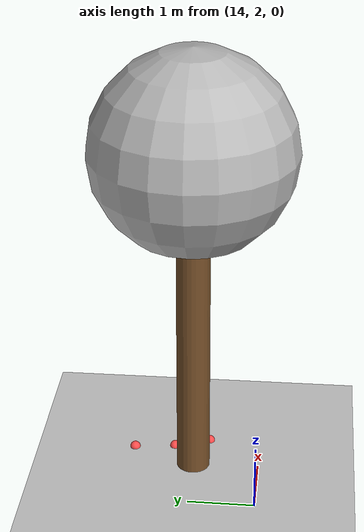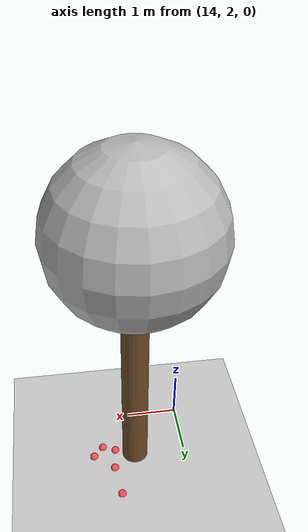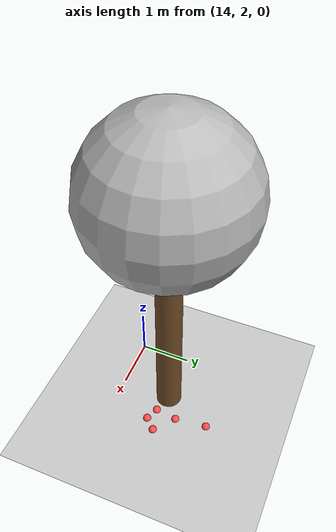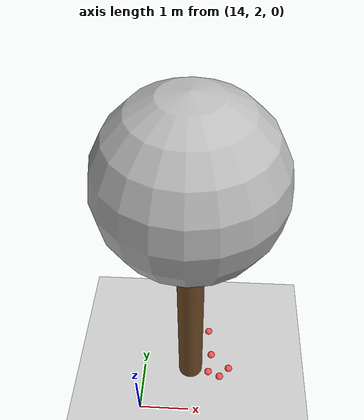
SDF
<sdf version="1.7">
 <world name="default">
  <model name="ground_plane">
   <static>1</static>
   <link name="link">
    <collision name="collision">
     <geometry><plane><normal>0 0 1</normal><size>100 100</size></plane></geometry>
     <surface>
      <contact><collide_bitmask>65535</collide_bitmask></contact>
      <friction><ode><mu>100</mu><mu2>50</mu2></ode></friction>
     </surface>
    </collision>
    <visual name="visual">
     <cast_shadows>0</cast_shadows>
     <geometry><plane><normal>0 0 1</normal><size>100 100</size></plane></geometry>
     <material>
      <script><uri>file://media/materials/scripts/gazebo.material</uri><name>Gazebo/Grey</name></script>
     </material>
    </visual>
   </link>
  </model>
  <model name="tree_simple_90">
   <static>1</static>
   <link name="link">
    <pose>0 0 0.1 0 -0 0</pose>
    <inertial>
     <mass>666</mass>
     <inertia>
      <ixx>0.0861167</ixx>
      <ixy>0</ixy>
      <ixz>0</ixz>
      <iyy>0.0861167</iyy>
      <iyz>0</iyz>
      <izz>0.0861167</izz>
     </inertia>
    </inertial>
    <collision name="collision_trunk">
     <pose>0 0 2 0 -0 0</pose>
     <geometry><cylinder><radius>0.25</radius><length>4</length></cylinder></geometry>
     <surface>
      <contact>
       <poissons_ratio>0.347</poissons_ratio>
       <elastic_modulus>8.8e+09</elastic_modulus>
       <ode><kp>100000</kp><kd>100</kd><max_vel>100</max_vel><min_depth>0.001</min_depth></ode>
      </contact>
      <friction>
       <torsional>
        <coefficient>1</coefficient>
        <use_patch_radius>0</use_patch_radius>
        <surface_radius>0.01</surface_radius>
       </torsional>
      </friction>
     </surface>
    </collision>
    <collision name="collision_treetop">
     <pose>0 0 5.2 0 -0 0</pose>
     <geometry><sphere><radius>1.5</radius></sphere></geometry>
     <surface>
      <contact>
       <poissons_ratio>0.347</poissons_ratio>
       <elastic_modulus>8.8e+09</elastic_modulus>
       <ode><kp>100000</kp><kd>100</kd><max_vel>100</max_vel><min_depth>0.001</min_depth></ode>
      </contact>
      <friction>
       <torsional>
        <coefficient>1</coefficient>
        <use_patch_radius>0</use_patch_radius>
        <surface_radius>0.01</surface_radius>
       </torsional>
      </friction>
     </surface>
    </collision>
    <visual name="trunk">
     <pose>0 0 2 0 -0 0</pose>
     <geometry><cylinder><radius>0.25</radius><length>4</length></cylinder></geometry>
     <material>
      <script>
       <uri>model://tree_simple/scripts</uri>
       <uri>model://tree_simple/materials/textures</uri>
       <name>TreeSimple/Trunk</name>
      </script>
     </material>
    </visual>
    <visual name="treetop">
     <pose>0 0 5.2 0 -0 0</pose>
     <geometry><sphere><radius>1.5</radius></sphere></geometry>
     <material>
      <script>
       <uri>model://tree_simple/scripts</uri>
       <uri>model://tree_simple/materials/textures</uri>
       <name>TreeSimple/Treetop</name>
      </script>
     </material>
    </visual>
   </link>
   <pose>15 3 -0.1 0 -0 0</pose>
  </model>
  <model name="seed_red_367">
   <link name="link">
    <inertial>
     <mass>1</mass>
     <inertia><ixx>0.1</ixx><ixy>0</ixy><ixz>0</ixz><iyy>0.1</iyy><iyz>0</iyz><izz>0.1</izz></inertia>
    </inertial>
    <visual name="visual">
     <geometry><sphere><radius>0.08</radius></sphere></geometry>
     <material>
      <script><name>Gazebo/Grey</name><uri>file://media/materials/scripts/gazebo.material</uri></script>
      <shader type="pixel"><normal_map>__default__</normal_map></shader>
      <ambient>1 0.3 0.3 1</ambient>
      <diffuse>0.7 0.7 0.7 1</diffuse>
      <specular>0.01 0.01 0.01 1</specular>
      <emissive>0 0 0 1</emissive>
     </material>
    </visual>
    <collision name="collision">
     <geometry><sphere><radius>0.0005</radius></sphere></geometry>
     <surface>
      <friction>
       <ode><mu>1</mu><mu2>1</mu2><fdir1>0 0 0</fdir1><slip1>0</slip1><slip2>0</slip2></ode>
       <torsional>
        <coefficient>1</coefficient>
        <patch_radius>0</patch_radius>
        <surface_radius>0</surface_radius>
        <use_patch_radius>1</use_patch_radius>
        <ode><slip>0</slip></ode>
       </torsional>
      </friction>
      <bounce><restitution_coefficient>0</restitution_coefficient><threshold>1e+06</threshold></bounce>
      <contact>
       <collide_without_contact>0</collide_without_contact>
       <collide_without_contact_bitmask>1</collide_without_contact_bitmask>
       <collide_bitmask>1</collide_bitmask>
       <ode>
        <soft_cfm>0</soft_cfm>
        <soft_erp>0.2</soft_erp>
        <kp>1e+13</kp>
        <kd>1</kd>
        <max_vel>0.01</max_vel>
        <min_depth>0</min_depth>
       </ode>
       <bullet>
        <split_impulse>1</split_impulse>
        <split_impulse_penetration_threshold>-0.01</split_impulse_penetration_threshold>
        <soft_cfm>0</soft_cfm>
        <soft_erp>0.2</soft_erp>
        <kp>1e+13</kp>
        <kd>1</kd>
       </bullet>
      </contact>
     </surface>
    </collision>
   </link>
   <static>0</static>
   <pose>15.8372 3.00099 0.0005 0 -0 0</pose>
  </model>
  <model name="seed_red_368">
   <link name="link">
    <inertial>
     <mass>1</mass>
     <inertia><ixx>0.1</ixx><ixy>0</ixy><ixz>0</ixz><iyy>0.1</iyy><iyz>0</iyz><izz>0.1</izz></inertia>
    </inertial>
    <visual name="visual">
     <geometry><sphere><radius>0.08</radius></sphere></geometry>
     <material>
      <script><name>Gazebo/Grey</name><uri>file://media/materials/scripts/gazebo.material</uri></script>
      <shader type="pixel"><normal_map>__default__</normal_map></shader>
      <ambient>1 0.3 0.3 1</ambient>
      <diffuse>0.7 0.7 0.7 1</diffuse>
      <specular>0.01 0.01 0.01 1</specular>
      <emissive>0 0 0 1</emissive>
     </material>
    </visual>
    <collision name="collision">
     <geometry><sphere><radius>0.0005</radius></sphere></geometry>
     <surface>
      <friction>
       <ode><mu>1</mu><mu2>1</mu2><fdir1>0 0 0</fdir1><slip1>0</slip1><slip2>0</slip2></ode>
       <torsional>
        <coefficient>1</coefficient>
        <patch_radius>0</patch_radius>
        <surface_radius>0</surface_radius>
        <use_patch_radius>1</use_patch_radius>
        <ode><slip>0</slip></ode>
       </torsional>
      </friction>
      <bounce><restitution_coefficient>0</restitution_coefficient><threshold>1e+06</threshold></bounce>
      <contact>
       <collide_without_contact>0</collide_without_contact>
       <collide_without_contact_bitmask>1</collide_without_contact_bitmask>
       <collide_bitmask>1</collide_bitmask>
       <ode>
        <soft_cfm>0</soft_cfm>
        <soft_erp>0.2</soft_erp>
        <kp>1e+13</kp>
        <kd>1</kd>
        <max_vel>0.01</max_vel>
        <min_depth>0</min_depth>
       </ode>
       <bullet>
        <split_impulse>1</split_impulse>
        <split_impulse_penetration_threshold>-0.01</split_impulse_penetration_threshold>
        <soft_cfm>0</soft_cfm>
        <soft_erp>0.2</soft_erp>
        <kp>1e+13</kp>
        <kd>1</kd>
       </bullet>
      </contact>
     </surface>
    </collision>
   </link>
   <static>0</static>
   <pose>15.3734 3.9484 0.0005 0 -0 0</pose>
  </model>
  <model name="seed_red_372">
   <link name="link">
    <inertial>
     <mass>1</mass>
     <inertia><ixx>0.1</ixx><ixy>0</ixy><ixz>0</ixz><iyy>0.1</iyy><iyz>0</iyz><izz>0.1</izz></inertia>
    </inertial>
    <visual name="visual">
     <geometry><sphere><radius>0.08</radius></sphere></geometry>
     <material>
      <script><name>Gazebo/Grey</name><uri>file://media/materials/scripts/gazebo.material</uri></script>
      <shader type="pixel"><normal_map>__default__</normal_map></shader>
      <ambient>1 0.3 0.3 1</ambient>
      <diffuse>0.7 0.7 0.7 1</diffuse>
      <specular>0.01 0.01 0.01 1</specular>
      <emissive>0 0 0 1</emissive>
     </material>
    </visual>
    <collision name="collision">
     <geometry><sphere><radius>0.0005</radius></sphere></geometry>
     <surface>
      <friction>
       <ode><mu>1</mu><mu2>1</mu2><fdir1>0 0 0</fdir1><slip1>0</slip1><slip2>0</slip2></ode>
       <torsional>
        <coefficient>1</coefficient>
        <patch_radius>0</patch_radius>
        <surface_radius>0</surface_radius>
        <use_patch_radius>1</use_patch_radius>
        <ode><slip>0</slip></ode>
       </torsional>
      </friction>
      <bounce><restitution_coefficient>0</restitution_coefficient><threshold>1e+06</threshold></bounce>
      <contact>
       <collide_without_contact>0</collide_without_contact>
       <collide_without_contact_bitmask>1</collide_without_contact_bitmask>
       <collide_bitmask>1</collide_bitmask>
       <ode>
        <soft_cfm>0</soft_cfm>
        <soft_erp>0.2</soft_erp>
        <kp>1e+13</kp>
        <kd>1</kd>
        <max_vel>0.01</max_vel>
        <min_depth>0</min_depth>
       </ode>
       <bullet>
        <split_impulse>1</split_impulse>
        <split_impulse_penetration_threshold>-0.01</split_impulse_penetration_threshold>
        <soft_cfm>0</soft_cfm>
        <soft_erp>0.2</soft_erp>
        <kp>1e+13</kp>
        <kd>1</kd>
       </bullet>
      </contact>
     </surface>
    </collision>
   </link>
   <static>0</static>
   <pose>15.3914 2.8975 0.0005 0 -0 0</pose>
  </model>
  <model name="seed_red_373">
   <link name="link">
    <inertial>
     <mass>1</mass>
     <inertia><ixx>0.1</ixx><ixy>0</ixy><ixz>0</ixz><iyy>0.1</iyy><iyz>0</iyz><izz>0.1</izz></inertia>
    </inertial>
    <visual name="visual">
     <geometry><sphere><radius>0.08</radius></sphere></geometry>
     <material>
      <script><name>Gazebo/Grey</name><uri>file://media/materials/scripts/gazebo.material</uri></script>
      <shader type="pixel"><normal_map>__default__</normal_map></shader>
      <ambient>1 0.3 0.3 1</ambient>
      <diffuse>0.7 0.7 0.7 1</diffuse>
      <specular>0.01 0.01 0.01 1</specular>
      <emissive>0 0 0 1</emissive>
     </material>
    </visual>
    <collision name="collision">
     <geometry><sphere><radius>0.0005</radius></sphere></geometry>
     <surface>
      <friction>
       <ode><mu>1</mu><mu2>1</mu2><fdir1>0 0 0</fdir1><slip1>0</slip1><slip2>0</slip2></ode>
       <torsional>
        <coefficient>1</coefficient>
        <patch_radius>0</patch_radius>
        <surface_radius>0</surface_radius>
        <use_patch_radius>1</use_patch_radius>
        <ode><slip>0</slip></ode>
       </torsional>
      </friction>
      <bounce><restitution_coefficient>0</restitution_coefficient><threshold>1e+06</threshold></bounce>
      <contact>
       <collide_without_contact>0</collide_without_contact>
       <collide_without_contact_bitmask>1</collide_without_contact_bitmask>
       <collide_bitmask>1</collide_bitmask>
       <ode>
        <soft_cfm>0</soft_cfm>
        <soft_erp>0.2</soft_erp>
        <kp>1e+13</kp>
        <kd>1</kd>
        <max_vel>0.01</max_vel>
        <min_depth>0</min_depth>
       </ode>
       <bullet>
        <split_impulse>1</split_impulse>
        <split_impulse_penetration_threshold>-0.01</split_impulse_penetration_threshold>
        <soft_cfm>0</soft_cfm>
        <soft_erp>0.2</soft_erp>
        <kp>1e+13</kp>
        <kd>1</kd>
       </bullet>
      </contact>
     </surface>
    </collision>
   </link>
   <static>0</static>
   <pose>15.4477 3.32466 0.0005 0 -0 0</pose>
  </model>
  <model name="seed_red_374">
   <link name="link">
    <inertial>
     <mass>1</mass>
     <inertia><ixx>0.1</ixx><ixy>0</ixy><ixz>0</ixz><iyy>0.1</iyy><iyz>0</iyz><izz>0.1</izz></inertia>
    </inertial>
    <visual name="visual">
     <geometry><sphere><radius>0.08</radius></sphere></geometry>
     <material>
      <script><name>Gazebo/Grey</name><uri>file://media/materials/scripts/gazebo.material</uri></script>
      <shader type="pixel"><normal_map>__default__</normal_map></shader>
      <ambient>1 0.3 0.3 1</ambient>
      <diffuse>0.7 0.7 0.7 1</diffuse>
      <specular>0.01 0.01 0.01 1</specular>
      <emissive>0 0 0 1</emissive>
     </material>
    </visual>
    <collision name="collision">
     <geometry><sphere><radius>0.0005</radius></sphere></geometry>
     <surface>
      <friction>
       <ode><mu>1</mu><mu2>1</mu2><fdir1>0 0 0</fdir1><slip1>0</slip1><slip2>0</slip2></ode>
       <torsional>
        <coefficient>1</coefficient>
        <patch_radius>0</patch_radius>
        <surface_radius>0</surface_radius>
        <use_patch_radius>1</use_patch_radius>
        <ode><slip>0</slip></ode>
       </torsional>
      </friction>
      <bounce><restitution_coefficient>0</restitution_coefficient><threshold>1e+06</threshold></bounce>
      <contact>
       <collide_without_contact>0</collide_without_contact>
       <collide_without_contact_bitmask>1</collide_without_contact_bitmask>
       <collide_bitmask>1</collide_bitmask>
       <ode>
        <soft_cfm>0</soft_cfm>
        <soft_erp>0.2</soft_erp>
        <kp>1e+13</kp>
        <kd>1</kd>
        <max_vel>0.01</max_vel>
        <min_depth>0</min_depth>
       </ode>
       <bullet>
        <split_impulse>1</split_impulse>
        <split_impulse_penetration_threshold>-0.01</split_impulse_penetration_threshold>
        <soft_cfm>0</soft_cfm>
        <soft_erp>0.2</soft_erp>
        <kp>1e+13</kp>
        <kd>1</kd>
       </bullet>
      </contact>
     </surface>
    </collision>
   </link>
   <static>0</static>
   <pose>15.6416 2.79389 0.0005 0 -0 0</pose>
  </model>
 </world>
</sdf>
